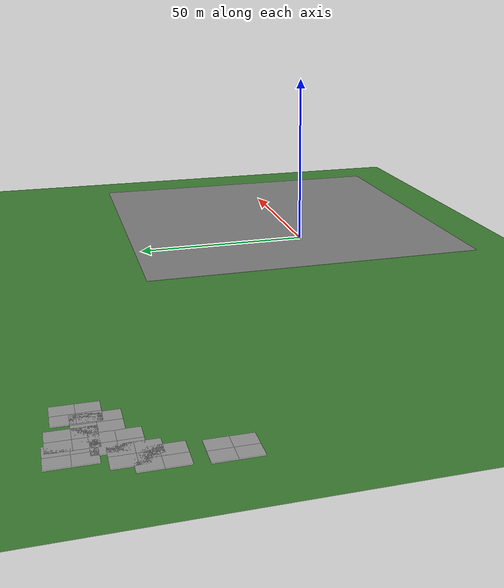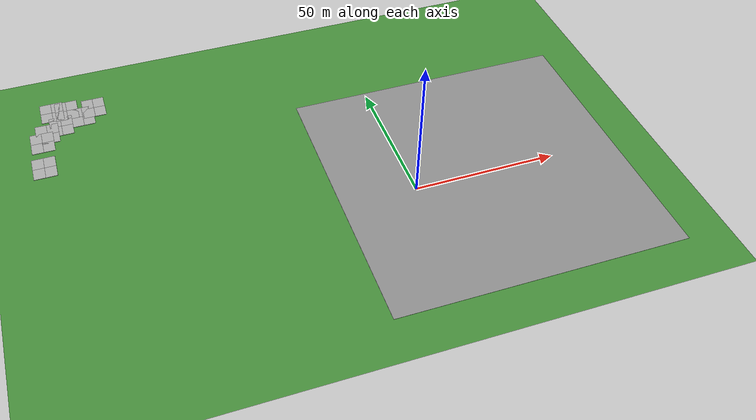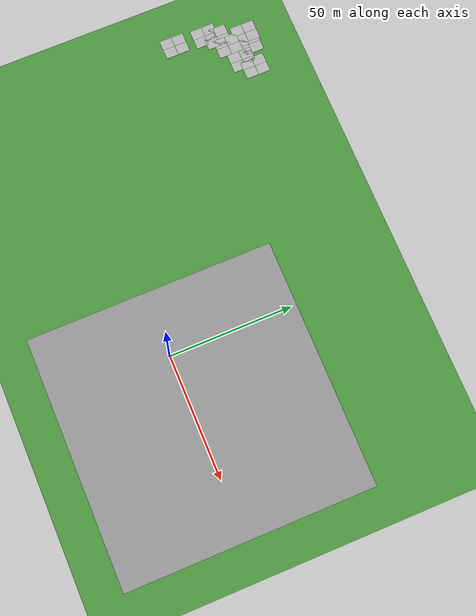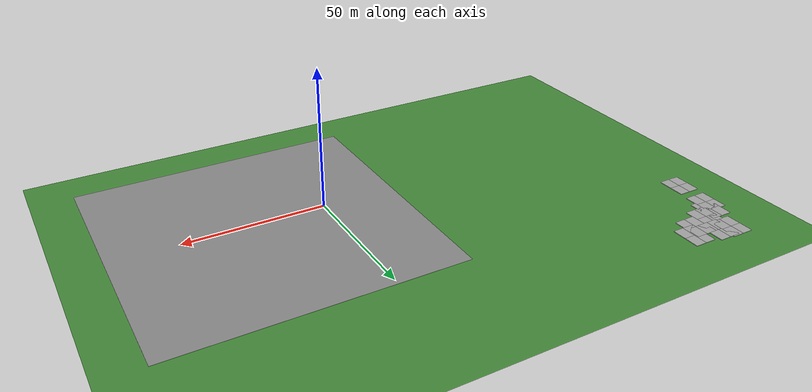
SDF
<sdf version="1.7">
 <world name="default">
  <model name="ground_plane">
   <static>1</static>
   <link name="link">
    <collision name="collision">
     <geometry><plane><normal>0 0 1</normal><size>5000 5000</size></plane></geometry>
     <surface><friction><ode><mu>1</mu><mu2>1</mu2></ode></friction></surface>
    </collision>
    <visual name="grass">
     <pose>0 0 -0.1 0 -0 0</pose>
     <cast_shadows>0</cast_shadows>
     <geometry><plane><normal>0 0 1</normal><size>5000 5000</size></plane></geometry>
     <material>
      <script><uri>file://media/materials/scripts/gazebo.material</uri><name>Gazebo/Grass</name></script>
     </material>
    </visual>
   </link>
  </model>
  <model name="ground_plane_0">
   <static>1</static>
   <link name="link">
    <collision name="collision">
     <geometry><plane><normal>0 0 1</normal><size>100 100</size></plane></geometry>
     <surface>
      <contact><collide_bitmask>65535</collide_bitmask></contact>
      <friction><ode><mu>100</mu><mu2>50</mu2></ode></friction>
     </surface>
    </collision>
    <visual name="visual">
     <cast_shadows>0</cast_shadows>
     <geometry><plane><normal>0 0 1</normal><size>100 100</size></plane></geometry>
     <material>
      <script><uri>file://media/materials/scripts/gazebo.material</uri><name>Gazebo/Grey</name></script>
     </material>
    </visual>
   </link>
   <pose>23.7201 2.14936 0 0 -0 0</pose>
  </model>
  <model name="mud_box">
   <static>1</static>
   <link name="link">
    <collision name="collision"><geometry><box><size>8 10 0.2</size></box></geometry></collision>
    <visual name="visual_1">
     <pose>-2 2.5 0 0 -0 0</pose>
     <cast_shadows>0</cast_shadows>
     <geometry><box><size>4 5 0.2</size></box></geometry>
     <material>
      <script>
       <uri>model://mud_box/materials/scripts</uri>
       <uri>model://mud_box/materials/textures</uri>
       <name>vrc/mud</name>
      </script>
     </material>
    </visual>
    <visual name="visual_2">
     <pose>2 2.5 0 0 -0 0</pose>
     <cast_shadows>0</cast_shadows>
     <geometry><box><size>4 5 0.2</size></box></geometry>
     <material>
      <script>
       <uri>model://mud_box/materials/scripts</uri>
       <uri>model://mud_box/materials/textures</uri>
       <name>vrc/mud</name>
      </script>
     </material>
    </visual>
    <visual name="visual_3">
     <pose>2 -2.5 0 0 -0 0</pose>
     <cast_shadows>0</cast_shadows>
     <geometry><box><size>4 5 0.2</size></box></geometry>
     <material>
      <script>
       <uri>model://mud_box/materials/scripts</uri>
       <uri>model://mud_box/materials/textures</uri>
       <name>vrc/mud</name>
      </script>
     </material>
    </visual>
    <visual name="visual_4">
     <pose>-2 -2.5 0 0 -0 0</pose>
     <cast_shadows>0</cast_shadows>
     <geometry><box><size>4 5 0.2</size></box></geometry>
     <material>
      <script>
       <uri>model://mud_box/materials/scripts</uri>
       <uri>model://mud_box/materials/textures</uri>
       <name>vrc/mud</name>
      </script>
     </material>
    </visual>
   </link>
   <pose>-108.488 69.3522 0 0 -0 0</pose>
  </model>
  <model name="mud_box_2">
   <static>1</static>
   <link name="link">
    <collision name="collision"><geometry><box><size>8 10 0.2</size></box></geometry></collision>
    <visual name="visual_1">
     <pose>-2 2.5 0 0 -0 0</pose>
     <cast_shadows>0</cast_shadows>
     <geometry><box><size>4 5 0.2</size></box></geometry>
     <material>
      <script>
       <uri>model://mud_box/materials/scripts</uri>
       <uri>model://mud_box/materials/textures</uri>
       <name>vrc/mud</name>
      </script>
     </material>
    </visual>
    <visual name="visual_2">
     <pose>2 2.5 0 0 -0 0</pose>
     <cast_shadows>0</cast_shadows>
     <geometry><box><size>4 5 0.2</size></box></geometry>
     <material>
      <script>
       <uri>model://mud_box/materials/scripts</uri>
       <uri>model://mud_box/materials/textures</uri>
       <name>vrc/mud</name>
      </script>
     </material>
    </visual>
    <visual name="visual_3">
     <pose>2 -2.5 0 0 -0 0</pose>
     <cast_shadows>0</cast_shadows>
     <geometry><box><size>4 5 0.2</size></box></geometry>
     <material>
      <script>
       <uri>model://mud_box/materials/scripts</uri>
       <uri>model://mud_box/materials/textures</uri>
       <name>vrc/mud</name>
      </script>
     </material>
    </visual>
    <visual name="visual_4">
     <pose>-2 -2.5 0 0 -0 0</pose>
     <cast_shadows>0</cast_shadows>
     <geometry><box><size>4 5 0.2</size></box></geometry>
     <material>
      <script>
       <uri>model://mud_box/materials/scripts</uri>
       <uri>model://mud_box/materials/textures</uri>
       <name>vrc/mud</name>
      </script>
     </material>
    </visual>
   </link>
   <pose>-116.47 49.3981 0 0 -0 0</pose>
  </model>
  <model name="mud_box_3">
   <static>1</static>
   <link name="link">
    <collision name="collision"><geometry><box><size>8 10 0.2</size></box></geometry></collision>
    <visual name="visual_1">
     <pose>-2 2.5 0 0 -0 0</pose>
     <cast_shadows>0</cast_shadows>
     <geometry><box><size>4 5 0.2</size></box></geometry>
     <material>
      <script>
       <uri>model://mud_box/materials/scripts</uri>
       <uri>model://mud_box/materials/textures</uri>
       <name>vrc/mud</name>
      </script>
     </material>
    </visual>
    <visual name="visual_2">
     <pose>2 2.5 0 0 -0 0</pose>
     <cast_shadows>0</cast_shadows>
     <geometry><box><size>4 5 0.2</size></box></geometry>
     <material>
      <script>
       <uri>model://mud_box/materials/scripts</uri>
       <uri>model://mud_box/materials/textures</uri>
       <name>vrc/mud</name>
      </script>
     </material>
    </visual>
    <visual name="visual_3">
     <pose>2 -2.5 0 0 -0 0</pose>
     <cast_shadows>0</cast_shadows>
     <geometry><box><size>4 5 0.2</size></box></geometry>
     <material>
      <script>
       <uri>model://mud_box/materials/scripts</uri>
       <uri>model://mud_box/materials/textures</uri>
       <name>vrc/mud</name>
      </script>
     </material>
    </visual>
    <visual name="visual_4">
     <pose>-2 -2.5 0 0 -0 0</pose>
     <cast_shadows>0</cast_shadows>
     <geometry><box><size>4 5 0.2</size></box></geometry>
     <material>
      <script>
       <uri>model://mud_box/materials/scripts</uri>
       <uri>model://mud_box/materials/textures</uri>
       <name>vrc/mud</name>
      </script>
     </material>
    </visual>
   </link>
   <pose>-100.61 72.2957 0 0 -0 0</pose>
  </model>
  <model name="mud_box_3_clone">
   <static>1</static>
   <link name="link">
    <collision name="collision"><geometry><box><size>8 10 0.2</size></box></geometry></collision>
    <visual name="visual_1">
     <pose>-2 2.5 0 0 -0 0</pose>
     <cast_shadows>0</cast_shadows>
     <geometry><box><size>4 5 0.2</size></box></geometry>
     <material>
      <script>
       <uri>model://mud_box/materials/scripts</uri>
       <uri>model://mud_box/materials/textures</uri>
       <name>vrc/mud</name>
      </script>
     </material>
    </visual>
    <visual name="visual_2">
     <pose>2 2.5 0 0 -0 0</pose>
     <cast_shadows>0</cast_shadows>
     <geometry><box><size>4 5 0.2</size></box></geometry>
     <material>
      <script>
       <uri>model://mud_box/materials/scripts</uri>
       <uri>model://mud_box/materials/textures</uri>
       <name>vrc/mud</name>
      </script>
     </material>
    </visual>
    <visual name="visual_3">
     <pose>2 -2.5 0 0 -0 0</pose>
     <cast_shadows>0</cast_shadows>
     <geometry><box><size>4 5 0.2</size></box></geometry>
     <material>
      <script>
       <uri>model://mud_box/materials/scripts</uri>
       <uri>model://mud_box/materials/textures</uri>
       <name>vrc/mud</name>
      </script>
     </material>
    </visual>
    <visual name="visual_4">
     <pose>-2 -2.5 0 0 -0 0</pose>
     <cast_shadows>0</cast_shadows>
     <geometry><box><size>4 5 0.2</size></box></geometry>
     <material>
      <script>
       <uri>model://mud_box/materials/scripts</uri>
       <uri>model://mud_box/materials/textures</uri>
       <name>vrc/mud</name>
      </script>
     </material>
    </visual>
   </link>
   <pose>-113.68 66.5172 0 0 -0 0</pose>
  </model>
  <model name="mud_box_3_clone_0">
   <static>1</static>
   <link name="link">
    <collision name="collision"><geometry><box><size>8 10 0.2</size></box></geometry></collision>
    <visual name="visual_1">
     <pose>-2 2.5 0 0 -0 0</pose>
     <cast_shadows>0</cast_shadows>
     <geometry><box><size>4 5 0.2</size></box></geometry>
     <material>
      <script>
       <uri>model://mud_box/materials/scripts</uri>
       <uri>model://mud_box/materials/textures</uri>
       <name>vrc/mud</name>
      </script>
     </material>
    </visual>
    <visual name="visual_2">
     <pose>2 2.5 0 0 -0 0</pose>
     <cast_shadows>0</cast_shadows>
     <geometry><box><size>4 5 0.2</size></box></geometry>
     <material>
      <script>
       <uri>model://mud_box/materials/scripts</uri>
       <uri>model://mud_box/materials/textures</uri>
       <name>vrc/mud</name>
      </script>
     </material>
    </visual>
    <visual name="visual_3">
     <pose>2 -2.5 0 0 -0 0</pose>
     <cast_shadows>0</cast_shadows>
     <geometry><box><size>4 5 0.2</size></box></geometry>
     <material>
      <script>
       <uri>model://mud_box/materials/scripts</uri>
       <uri>model://mud_box/materials/textures</uri>
       <name>vrc/mud</name>
      </script>
     </material>
    </visual>
    <visual name="visual_4">
     <pose>-2 -2.5 0 0 -0 0</pose>
     <cast_shadows>0</cast_shadows>
     <geometry><box><size>4 5 0.2</size></box></geometry>
     <material>
      <script>
       <uri>model://mud_box/materials/scripts</uri>
       <uri>model://mud_box/materials/textures</uri>
       <name>vrc/mud</name>
      </script>
     </material>
    </visual>
   </link>
   <pose>-105.777 77.2628 0 0 -0 0</pose>
  </model>
  <model name="mud_box_3_clone_1">
   <static>1</static>
   <link name="link">
    <collision name="collision"><geometry><box><size>8 10 0.2</size></box></geometry></collision>
    <visual name="visual_1">
     <pose>-2 2.5 0 0 -0 0</pose>
     <cast_shadows>0</cast_shadows>
     <geometry><box><size>4 5 0.2</size></box></geometry>
     <material>
      <script>
       <uri>model://mud_box/materials/scripts</uri>
       <uri>model://mud_box/materials/textures</uri>
       <name>vrc/mud</name>
      </script>
     </material>
    </visual>
    <visual name="visual_2">
     <pose>2 2.5 0 0 -0 0</pose>
     <cast_shadows>0</cast_shadows>
     <geometry><box><size>4 5 0.2</size></box></geometry>
     <material>
      <script>
       <uri>model://mud_box/materials/scripts</uri>
       <uri>model://mud_box/materials/textures</uri>
       <name>vrc/mud</name>
      </script>
     </material>
    </visual>
    <visual name="visual_3">
     <pose>2 -2.5 0 0 -0 0</pose>
     <cast_shadows>0</cast_shadows>
     <geometry><box><size>4 5 0.2</size></box></geometry>
     <material>
      <script>
       <uri>model://mud_box/materials/scripts</uri>
       <uri>model://mud_box/materials/textures</uri>
       <name>vrc/mud</name>
      </script>
     </material>
    </visual>
    <visual name="visual_4">
     <pose>-2 -2.5 0 0 -0 0</pose>
     <cast_shadows>0</cast_shadows>
     <geometry><box><size>4 5 0.2</size></box></geometry>
     <material>
      <script>
       <uri>model://mud_box/materials/scripts</uri>
       <uri>model://mud_box/materials/textures</uri>
       <name>vrc/mud</name>
      </script>
     </material>
    </visual>
   </link>
   <pose>-96.2023 75.9588 0 0 -0 0</pose>
  </model>
  <model name="mud_box_3_clone_2">
   <static>1</static>
   <link name="link">
    <collision name="collision"><geometry><box><size>8 10 0.2</size></box></geometry></collision>
    <visual name="visual_1">
     <pose>-2 2.5 0 0 -0 0</pose>
     <cast_shadows>0</cast_shadows>
     <geometry><box><size>4 5 0.2</size></box></geometry>
     <material>
      <script>
       <uri>model://mud_box/materials/scripts</uri>
       <uri>model://mud_box/materials/textures</uri>
       <name>vrc/mud</name>
      </script>
     </material>
    </visual>
    <visual name="visual_2">
     <pose>2 2.5 0 0 -0 0</pose>
     <cast_shadows>0</cast_shadows>
     <geometry><box><size>4 5 0.2</size></box></geometry>
     <material>
      <script>
       <uri>model://mud_box/materials/scripts</uri>
       <uri>model://mud_box/materials/textures</uri>
       <name>vrc/mud</name>
      </script>
     </material>
    </visual>
    <visual name="visual_3">
     <pose>2 -2.5 0 0 -0 0</pose>
     <cast_shadows>0</cast_shadows>
     <geometry><box><size>4 5 0.2</size></box></geometry>
     <material>
      <script>
       <uri>model://mud_box/materials/scripts</uri>
       <uri>model://mud_box/materials/textures</uri>
       <name>vrc/mud</name>
      </script>
     </material>
    </visual>
    <visual name="visual_4">
     <pose>-2 -2.5 0 0 -0 0</pose>
     <cast_shadows>0</cast_shadows>
     <geometry><box><size>4 5 0.2</size></box></geometry>
     <material>
      <script>
       <uri>model://mud_box/materials/scripts</uri>
       <uri>model://mud_box/materials/textures</uri>
       <name>vrc/mud</name>
      </script>
     </material>
    </visual>
   </link>
   <pose>-115.843 62.3587 0 0 -0 0</pose>
  </model>
  <model name="mud_box_1_clone">
   <static>1</static>
   <link name="link">
    <collision name="collision"><geometry><box><size>8 10 0.2</size></box></geometry></collision>
    <visual name="visual_1">
     <pose>-2 2.5 0 0 -0 0</pose>
     <cast_shadows>0</cast_shadows>
     <geometry><box><size>4 5 0.2</size></box></geometry>
     <material>
      <script>
       <uri>model://mud_box/materials/scripts</uri>
       <uri>model://mud_box/materials/textures</uri>
       <name>vrc/mud</name>
      </script>
     </material>
    </visual>
    <visual name="visual_2">
     <pose>2 2.5 0 0 -0 0</pose>
     <cast_shadows>0</cast_shadows>
     <geometry><box><size>4 5 0.2</size></box></geometry>
     <material>
      <script>
       <uri>model://mud_box/materials/scripts</uri>
       <uri>model://mud_box/materials/textures</uri>
       <name>vrc/mud</name>
      </script>
     </material>
    </visual>
    <visual name="visual_3">
     <pose>2 -2.5 0 0 -0 0</pose>
     <cast_shadows>0</cast_shadows>
     <geometry><box><size>4 5 0.2</size></box></geometry>
     <material>
      <script>
       <uri>model://mud_box/materials/scripts</uri>
       <uri>model://mud_box/materials/textures</uri>
       <name>vrc/mud</name>
      </script>
     </material>
    </visual>
    <visual name="visual_4">
     <pose>-2 -2.5 0 0 -0 0</pose>
     <cast_shadows>0</cast_shadows>
     <geometry><box><size>4 5 0.2</size></box></geometry>
     <material>
      <script>
       <uri>model://mud_box/materials/scripts</uri>
       <uri>model://mud_box/materials/textures</uri>
       <name>vrc/mud</name>
      </script>
     </material>
    </visual>
   </link>
   <pose>-110.981 77.785 0 0 -0 0</pose>
  </model>
 </world>
</sdf>
